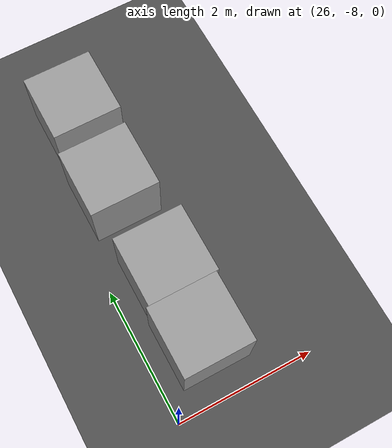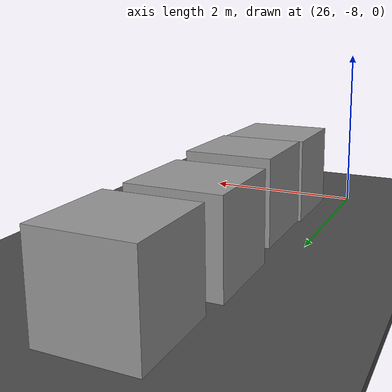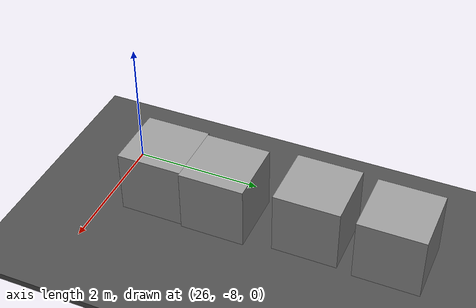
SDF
<sdf version="1.6">
 <world name="default">
  <model name="ground_plane">
   <static>1</static>
   <link name="link">
    <collision name="collision">
     <geometry><plane><normal>0 0 1</normal><size>100 100</size></plane></geometry>
     <surface><friction><ode><mu>150</mu><mu2>100</mu2></ode></friction></surface>
    </collision>
    <visual name="visual">
     <cast_shadows>0</cast_shadows>
     <geometry><plane><normal>0 0 1</normal><size>100 100</size></plane></geometry>
     <material>
      <script><uri>file://media/materials/scripts/gazebo.material</uri><name>Gazebo/Grey</name></script>
     </material>
    </visual>
    <velocity_decay><linear>0</linear><angular>0</angular></velocity_decay>
   </link>
  </model>
  <light name="sun" type="directional">
   <pose>0 0 10 0 -0 0</pose>
   <diffuse>0.8 0.8 0.8 1</diffuse>
   <specular>0.2 0.2 0.2 1</specular>
   <attenuation>
    <range>1000</range>
    <constant>0.9</constant>
    <linear>0.01</linear>
    <quadratic>0.001</quadratic>
   </attenuation>
   <direction>-0.5 0.1 -0.9</direction>
  </light>
  <physics name="default_physics" default="0" type="ode">
   <max_step_size>0.001</max_step_size>
   <real_time_factor>1</real_time_factor>
   <real_time_update_rate>1000</real_time_update_rate>
  </physics>
  <scene><ambient>0.4 0.4 0.4 1</ambient><background>0.7 0.7 0.7 1</background><shadows>1</shadows></scene>
  <spherical_coordinates>
   <surface_model>EARTH_WGS84</surface_model>
   <latitude_deg>0</latitude_deg>
   <longitude_deg>0</longitude_deg>
   <elevation>0</elevation>
   <heading_deg>0</heading_deg>
  </spherical_coordinates>
  <model name="asphalt_plane_3">
   <static>1</static>
   <link name="link">
    <collision name="collision"><geometry><box><size>1000 1000 0.1</size></box></geometry></collision>
    <visual name="visual">
     <cast_shadows>0</cast_shadows>
     <geometry><box><size>1000 1000 0.1</size></box></geometry>
     <material>
      <script>
       <uri>model://asphalt_plane/materials/scripts</uri>
       <uri>model://asphalt_plane/materials/textures</uri>
       <name>vrc/asphalt</name>
      </script>
     </material>
    </visual>
    <velocity_decay><linear>0</linear><angular>0</angular></velocity_decay>
   </link>
  </model>
  <gravity>0 0 -9.8</gravity>
  <magnetic_field>6e-06 2.3e-05 -4.2e-05</magnetic_field>
  <atmosphere type="adiabatic"/>
  <audio><device>default</device></audio>
  <model name="unit_box_2">
   <pose>26.7613 -7.15902 0.549998 -5e-06 -0 7e-06</pose>
   <link name="link">
    <inertial>
     <mass>1</mass>
     <inertia>
      <ixx>0.166667</ixx>
      <ixy>0</ixy>
      <ixz>0</ixz>
      <iyy>0.166667</iyy>
      <iyz>0</iyz>
      <izz>0.166667</izz>
     </inertia>
    </inertial>
    <collision name="collision"><geometry><box><size>1 1 1</size></box></geometry></collision>
    <visual name="visual">
     <geometry><box><size>1 1 1</size></box></geometry>
     <material>
      <script><name>Gazebo/Grey</name><uri>file://media/materials/scripts/gazebo.material</uri></script>
     </material>
    </visual>
   </link>
  </model>
  <model name="unit_box_3">
   <pose>26.7986 -6.159 0.549998 -5e-06 -0 7e-06</pose>
   <link name="link">
    <inertial>
     <mass>1</mass>
     <inertia>
      <ixx>0.166667</ixx>
      <ixy>0</ixy>
      <ixz>0</ixz>
      <iyy>0.166667</iyy>
      <iyz>0</iyz>
      <izz>0.166667</izz>
     </inertia>
    </inertial>
    <collision name="collision"><geometry><box><size>1 1 1</size></box></geometry></collision>
    <visual name="visual">
     <geometry><box><size>1 1 1</size></box></geometry>
     <material>
      <script><name>Gazebo/Grey</name><uri>file://media/materials/scripts/gazebo.material</uri></script>
     </material>
    </visual>
   </link>
  </model>
  <model name="unit_box_4">
   <pose>26.6969 -4.75068 0.55 -0 -0 -0</pose>
   <link name="link">
    <inertial>
     <mass>1</mass>
     <inertia>
      <ixx>0.166667</ixx>
      <ixy>0</ixy>
      <ixz>0</ixz>
      <iyy>0.166667</iyy>
      <iyz>0</iyz>
      <izz>0.166667</izz>
     </inertia>
    </inertial>
    <collision name="collision"><geometry><box><size>1 1 1</size></box></geometry></collision>
    <visual name="visual">
     <geometry><box><size>1 1 1</size></box></geometry>
     <material>
      <script><name>Gazebo/Grey</name><uri>file://media/materials/scripts/gazebo.material</uri></script>
     </material>
    </visual>
   </link>
  </model>
  <model name="unit_box">
   <pose>26.7507 -3.51524 0.55 -0 -0 -0</pose>
   <link name="link">
    <inertial>
     <mass>1</mass>
     <inertia>
      <ixx>0.166667</ixx>
      <ixy>0</ixy>
      <ixz>0</ixz>
      <iyy>0.166667</iyy>
      <iyz>0</iyz>
      <izz>0.166667</izz>
     </inertia>
    </inertial>
    <collision name="collision"><geometry><box><size>1 1 1</size></box></geometry></collision>
    <visual name="visual">
     <geometry><box><size>1 1 1</size></box></geometry>
     <material>
      <script><name>Gazebo/Grey</name><uri>file://media/materials/scripts/gazebo.material</uri></script>
     </material>
    </visual>
   </link>
  </model>
 </world>
</sdf>
